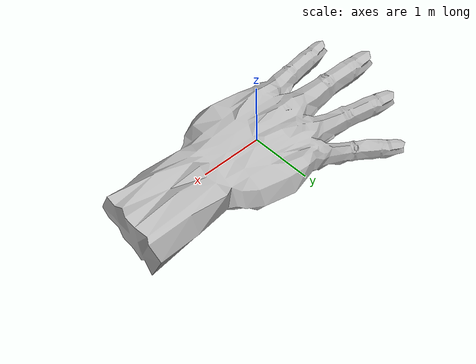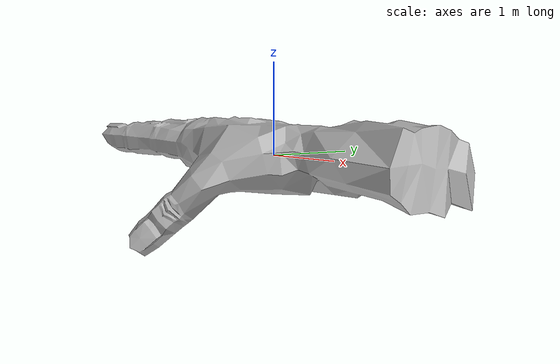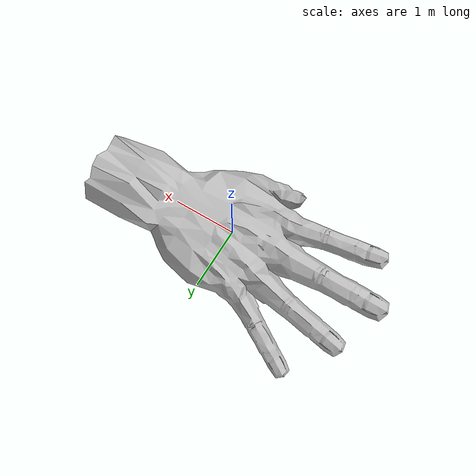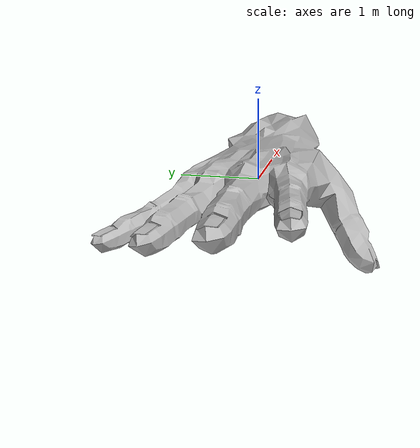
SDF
<?xml version="1.0" ?>
<sdf version='1.5'>
  <model name="hand">
      <pose>0 0 0 0 0 0</pose>
      <static>false</static>
      <link name="link">
        <inertial>
          <mass>0.5</mass>
          <inertia>
            <ixx>1.0</ixx>
            <ixy>0.0</ixy>
            <ixz>0.0</ixz>
            <iyy>1.0</iyy>
            <iyz>0.0</iyz>
            <izz>1.0</izz>
          </inertia>
        </inertial>

        <collision name="collision">
          <geometry>
            <box>
              <size>5.0 3.0 1.2</size>
            </box>
          </geometry>
          <max_contacts>10</max_contacts>
          <surface>
            <contact>
              <ode/>
            </contact>
            <bounce/>
            <friction>
              <torsional>
                <ode/>
              </torsional>
              <ode/>
            </friction>
          </surface>
        </collision>

        <visual name="visual">
          <geometry>
            <mesh>
              <uri>model://hand/meshes/hand.dae</uri>
            </mesh>
          </geometry>
        </visual>
        <self_collide>0</self_collide>
        <enable_wind>0</enable_wind>
        <kinematic>0</kinematic>
      </link>
    </model>
</sdf>
